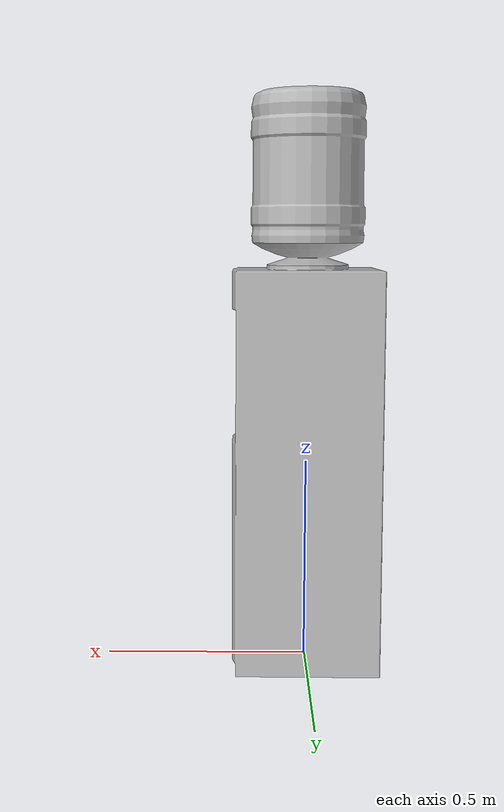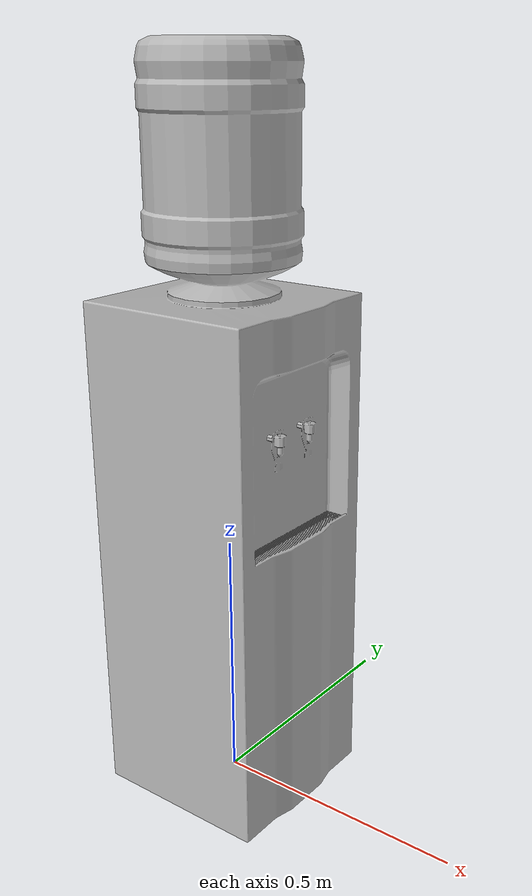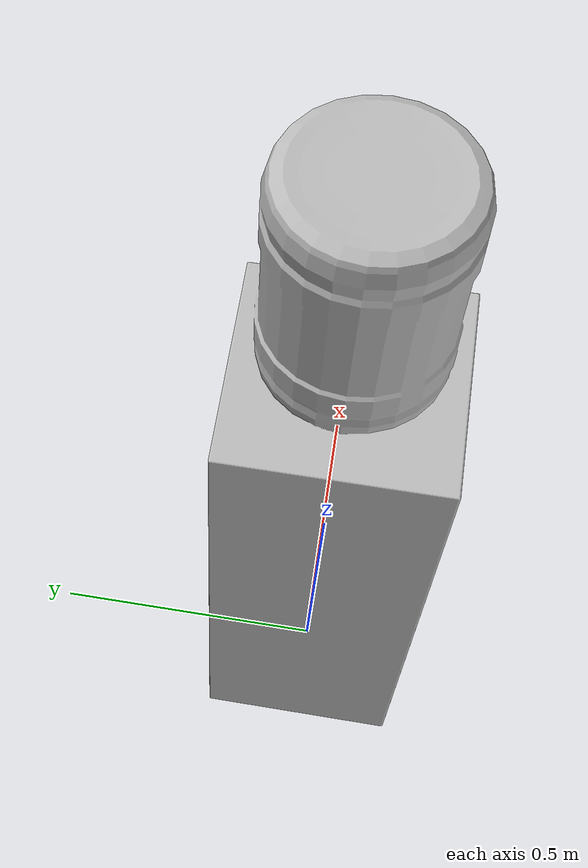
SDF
<?xml version='1.0'?>
<sdf version='1.4'>
  <model name='206'>
    <pose>0 0 0 0 0 0</pose>
    <static>true</static>
    <link name='link'>
      <collision name='collision'>
        <pose>0 0 0 0 0 0</pose>
        <geometry>
          <box>
            <size>0.36 0.35 2</size>
          </box>
        </geometry>
      </collision>
      <visual name='visual'>
        <pose>0 0 0 0 0 0</pose>
        <geometry>
          <mesh><uri>model://206/206.dae</uri></mesh>
        </geometry>
      </visual>
    </link>
  </model>
</sdf>
